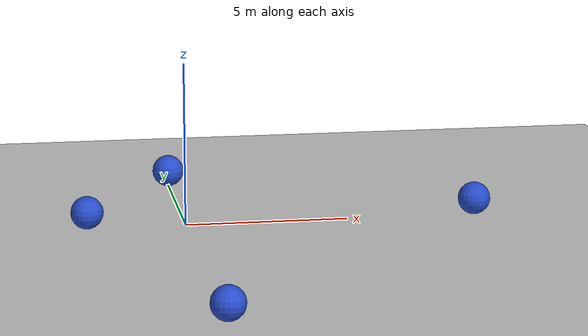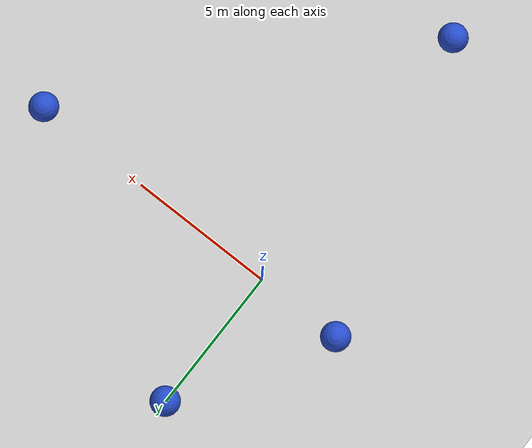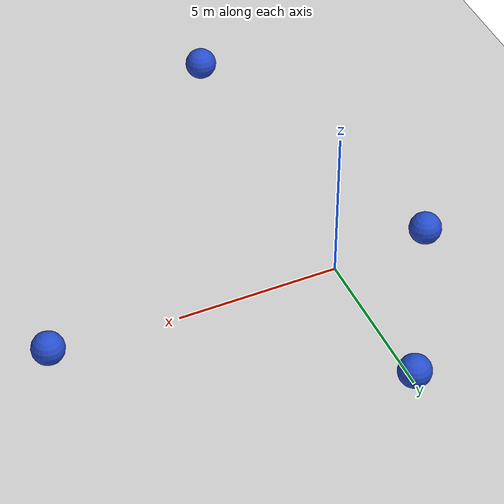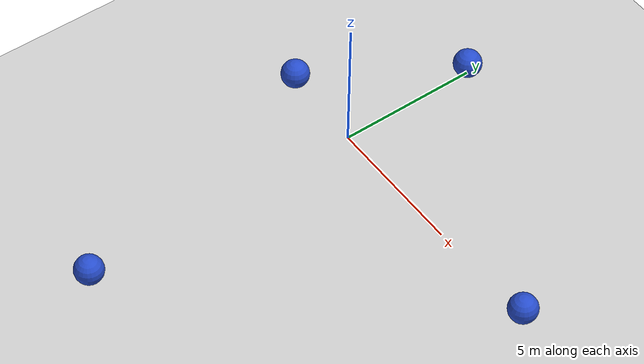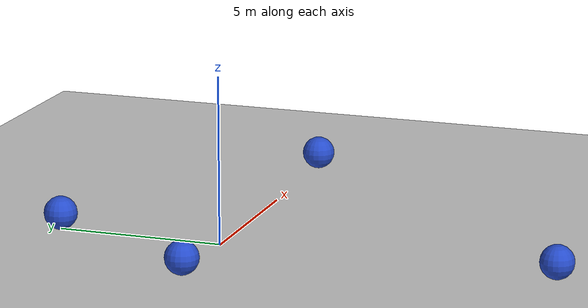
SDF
<sdf version="1.4">
 <world name="default">
  <model name="ground_plane">
   <static>1</static>
   <link name="link">
    <collision name="collision">
     <geometry><plane><normal>0 0 1</normal><size>100 100</size></plane></geometry>
     <surface><friction><ode><mu>100</mu><mu2>50</mu2></ode></friction></surface>
    </collision>
    <visual name="visual">
     <cast_shadows>0</cast_shadows>
     <geometry><plane><normal>0 0 1</normal><size>100 100</size></plane></geometry>
     <material>
      <script><uri>file://media/materials/scripts/gazebo.material</uri><name>Gazebo/Grey</name></script>
     </material>
    </visual>
    <velocity_decay><linear>0</linear><angular>0</angular></velocity_decay>
   </link>
  </model>
  <light name="sun" type="directional">
   <pose>0 0 10 0 -0 0</pose>
   <diffuse>0.8 0.8 0.8 1</diffuse>
   <specular>0.2 0.2 0.2 1</specular>
   <attenuation>
    <range>1000</range>
    <constant>0.9</constant>
    <linear>0.01</linear>
    <quadratic>0.001</quadratic>
   </attenuation>
   <direction>-0.5 0.1 -0.9</direction>
  </light>
  <physics type="ode">
   <max_step_size>0.001</max_step_size>
   <real_time_factor>1</real_time_factor>
   <real_time_update_rate>1000</real_time_update_rate>
   <gravity>0 0 -9.8</gravity>
  </physics>
  <scene><ambient>0.4 0.4 0.4 1</ambient><background>0.7 0.7 0.7 1</background><shadows>1</shadows></scene>
  <spherical_coordinates>
   <surface_model>EARTH_WGS84</surface_model>
   <latitude_deg>0</latitude_deg>
   <longitude_deg>0</longitude_deg>
   <elevation>0</elevation>
   <heading_deg>0</heading_deg>
  </spherical_coordinates>
  <model name="unit_sphere_1">
   <pose>9 0 0.5 0 -0 0</pose>
   <link name="link">
    <inertial>
     <mass>1</mass>
     <inertia><ixx>1</ixx><ixy>0</ixy><ixz>0</ixz><iyy>1</iyy><iyz>0</iyz><izz>1</izz></inertia>
    </inertial>
    <collision name="collision"><geometry><sphere><radius>0.5</radius></sphere></geometry></collision>
    <visual name="visual">
     <geometry><sphere><radius>0.5</radius></sphere></geometry>
     <material>
      <script><uri>file://media/materials/scripts/gazebo.material</uri><name>Gazebo/Blue</name></script>
     </material>
    </visual>
    <velocity_decay><linear>0</linear><angular>0</angular></velocity_decay>
   </link>
   <static>0</static>
  </model>
  <model name="unit_sphere_2">
   <pose>0 5 0.5 0 -0 0</pose>
   <link name="link">
    <inertial>
     <mass>1</mass>
     <inertia><ixx>1</ixx><ixy>0</ixy><ixz>0</ixz><iyy>1</iyy><iyz>0</iyz><izz>1</izz></inertia>
    </inertial>
    <collision name="collision"><geometry><sphere><radius>0.5</radius></sphere></geometry></collision>
    <visual name="visual">
     <geometry><sphere><radius>0.5</radius></sphere></geometry>
     <material>
      <script><uri>file://media/materials/scripts/gazebo.material</uri><name>Gazebo/Blue</name></script>
     </material>
    </visual>
    <velocity_decay><linear>0</linear><angular>0</angular></velocity_decay>
   </link>
   <static>0</static>
  </model>
  <model name="unit_sphere_3">
   <pose>-3 0 0.5 0 -0 0</pose>
   <link name="link">
    <inertial>
     <mass>1</mass>
     <inertia><ixx>1</ixx><ixy>0</ixy><ixz>0</ixz><iyy>1</iyy><iyz>0</iyz><izz>1</izz></inertia>
    </inertial>
    <collision name="collision"><geometry><sphere><radius>0.5</radius></sphere></geometry></collision>
    <visual name="visual">
     <geometry><sphere><radius>0.5</radius></sphere></geometry>
     <material>
      <script><uri>file://media/materials/scripts/gazebo.material</uri><name>Gazebo/Blue</name></script>
     </material>
    </visual>
    <velocity_decay><linear>0</linear><angular>0</angular></velocity_decay>
   </link>
   <static>0</static>
  </model>
  <model name="unit_sphere_6">
   <pose>0 -10 0.5 0 -0 0</pose>
   <link name="link">
    <inertial>
     <mass>1</mass>
     <inertia><ixx>1</ixx><ixy>0</ixy><ixz>0</ixz><iyy>1</iyy><iyz>0</iyz><izz>1</izz></inertia>
    </inertial>
    <collision name="collision"><geometry><sphere><radius>0.5</radius></sphere></geometry></collision>
    <visual name="visual">
     <geometry><sphere><radius>0.5</radius></sphere></geometry>
     <material>
      <script><uri>file://media/materials/scripts/gazebo.material</uri><name>Gazebo/Blue</name></script>
     </material>
    </visual>
    <velocity_decay><linear>0</linear><angular>0</angular></velocity_decay>
   </link>
   <static>0</static>
  </model>
 </world>
</sdf>
